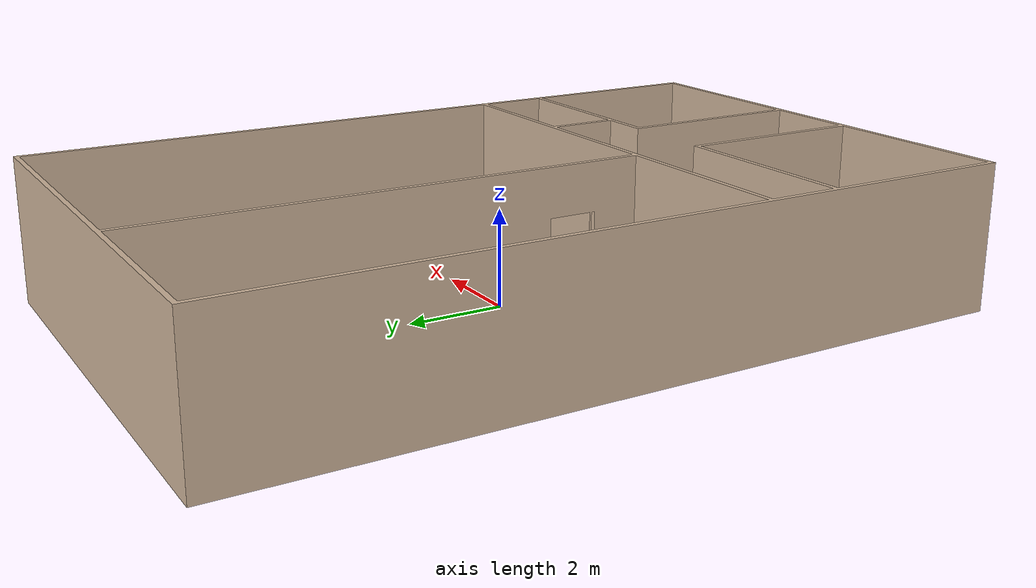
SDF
<?xml version='1.0'?>
<sdf version='1.7'>
  <model name='house_walls'>
    <link name='link_2'>
      <inertial>
        <mass>1</mass>
        <inertia>
          <ixx>0.166667</ixx>
          <ixy>0</ixy>
          <ixz>0</ixz>
          <iyy>0.166667</iyy>
          <iyz>0</iyz>
          <izz>0.166667</izz>
        </inertia>
        <pose>0 0 0 0 -0 0</pose>
      </inertial>
      <pose>1e-06 -2e-06 0 0 -0 0</pose>
      <self_collide>0</self_collide>
      <enable_wind>0</enable_wind>
      <kinematic>0</kinematic>
      <visual name='visual'>
        <pose>0 0 0 0 -0 0</pose>
        <geometry>
          <mesh>
            <uri>model://house_walls.dae</uri>
            <scale>1 1 1</scale>
          </mesh>
        </geometry>
        <material>
          <ambient>0.5 0.4 0.3 1</ambient>
          <diffuse>0.8 0.7 0.6 1</diffuse>
          <specular>0.3 0.3 0.3 1</specular>
          <emissive>0.1 0.1 0.1 1</emissive>
          <shader type='pixel'/>
          <script>
            <name>ModelPreview_3::link_2::visual_MATERIAL_</name>
            <uri>__default__</uri>
          </script>
        </material>
        <transparency>0</transparency>
        <cast_shadows>1</cast_shadows>
      </visual>
      <collision name='collision'>
        <laser_retro>0</laser_retro>
        <max_contacts>10</max_contacts>
        <pose>0 0 0 0 -0 0</pose>
        <geometry>
          <mesh>
            <uri>model://house_walls.dae</uri>
            <scale>1 1 1</scale>
          </mesh>
        </geometry>
        <surface>
          <friction>
            <ode>
              <mu>1</mu>
              <mu2>1</mu2>
              <fdir1>0 0 0</fdir1>
              <slip1>0</slip1>
              <slip2>0</slip2>
            </ode>
            <torsional>
              <coefficient>1</coefficient>
              <patch_radius>0</patch_radius>
              <surface_radius>0</surface_radius>
              <use_patch_radius>1</use_patch_radius>
              <ode>
                <slip>0</slip>
              </ode>
            </torsional>
          </friction>
          <bounce>
            <restitution_coefficient>0</restitution_coefficient>
            <threshold>1e+06</threshold>
          </bounce>
          <contact>
            <collide_without_contact>0</collide_without_contact>
            <collide_without_contact_bitmask>1</collide_without_contact_bitmask>
            <collide_bitmask>1</collide_bitmask>
            <ode>
              <soft_cfm>0</soft_cfm>
              <soft_erp>0.2</soft_erp>
              <kp>1e+13</kp>
              <kd>1</kd>
              <max_vel>0.01</max_vel>
              <min_depth>0</min_depth>
            </ode>
            <bullet>
              <split_impulse>1</split_impulse>
              <split_impulse_penetration_threshold>-0.01</split_impulse_penetration_threshold>
              <soft_cfm>0</soft_cfm>
              <soft_erp>0.2</soft_erp>
              <kp>1e+13</kp>
              <kd>1</kd>
            </bullet>
          </contact>
        </surface>
      </collision>
    </link>
    <static>1</static>
    <allow_auto_disable>1</allow_auto_disable>
  </model>
</sdf>
